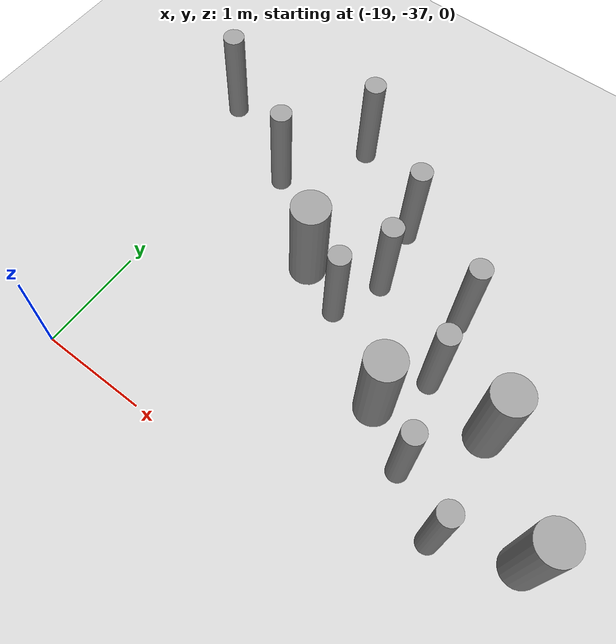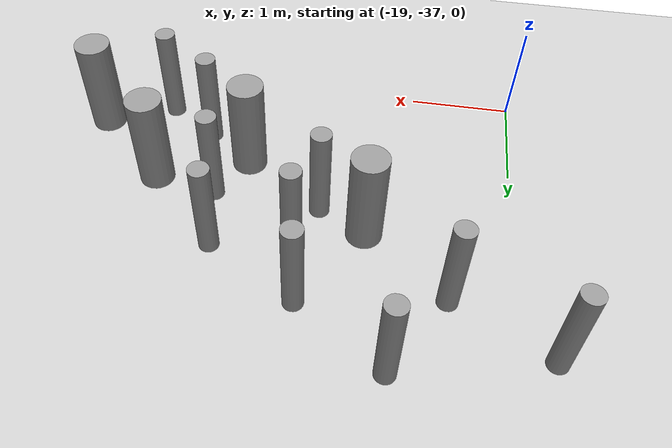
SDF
<sdf version="1.6">
 <world name="default">
  <model name="ground_plane">
   <static>1</static>
   <link name="link">
    <collision name="collision">
     <geometry><plane><normal>0 0 1</normal><size>100 100</size></plane></geometry>
     <surface><friction><ode><mu>100</mu><mu2>50</mu2></ode></friction></surface>
    </collision>
    <visual name="visual">
     <cast_shadows>0</cast_shadows>
     <geometry><plane><normal>0 0 1</normal><size>100 100</size></plane></geometry>
     <material>
      <script><uri>file://media/materials/scripts/gazebo.material</uri><name>Gazebo/Grey</name></script>
     </material>
    </visual>
   </link>
  </model>
  <model name="cyl_wall_clone_clone_1_clone_clone_0">
   <link name="link_0">
    <pose>-2.73893 -0.366465 0 0 -0 0</pose>
    <inertial>
     <mass>0.0374993</mass>
     <inertia>
      <ixx>0.00321281</ixx>
      <ixy>0</ixy>
      <ixz>0</ixz>
      <iyy>0.00321281</iyy>
      <iyz>0</iyz>
      <izz>0.000175774</izz>
     </inertia>
    </inertial>
    <visual name="visual">
     <geometry><cylinder><radius>0.0968661</radius><length>1</length></cylinder></geometry>
     <material>
      <lighting>1</lighting>
      <script><uri>file://media/materials/scripts/gazebo.material</uri><name>Gazebo/Grey</name></script>
      <ambient>0.3 0.3 0.3 1</ambient>
      <diffuse>0.7 0.7 0.7 1</diffuse>
      <specular>0.01 0.01 0.01 1</specular>
      <emissive>0 0 0 1</emissive>
     </material>
    </visual>
    <collision name="collision">
     <geometry><cylinder><radius>0.096866</radius><length>1</length></cylinder></geometry>
     <surface>
      <friction>
       <ode><mu>1</mu><mu2>1</mu2><fdir1>0 0 0</fdir1><slip1>0</slip1><slip2>0</slip2></ode>
       <torsional>
        <coefficient>1</coefficient>
        <patch_radius>0</patch_radius>
        <surface_radius>0</surface_radius>
        <use_patch_radius>1</use_patch_radius>
        <ode><slip>0</slip></ode>
       </torsional>
      </friction>
      <bounce><restitution_coefficient>0</restitution_coefficient><threshold>1e+06</threshold></bounce>
      <contact>
       <collide_without_contact>0</collide_without_contact>
       <collide_without_contact_bitmask>1</collide_without_contact_bitmask>
       <collide_bitmask>1</collide_bitmask>
       <ode>
        <soft_cfm>0</soft_cfm>
        <soft_erp>0.2</soft_erp>
        <kp>1e+13</kp>
        <kd>1</kd>
        <max_vel>0.01</max_vel>
        <min_depth>0</min_depth>
       </ode>
       <bullet>
        <split_impulse>1</split_impulse>
        <split_impulse_penetration_threshold>-0.01</split_impulse_penetration_threshold>
        <soft_cfm>0</soft_cfm>
        <soft_erp>0.2</soft_erp>
        <kp>1e+13</kp>
        <kd>1</kd>
       </bullet>
      </contact>
     </surface>
    </collision>
   </link>
   <link name="link_0_clone">
    <pose>-1.73893 0.61877 0 0 -0 0</pose>
    <inertial>
     <mass>0.0374993</mass>
     <inertia>
      <ixx>0.00321281</ixx>
      <ixy>0</ixy>
      <ixz>0</ixz>
      <iyy>0.00321281</iyy>
      <iyz>0</iyz>
      <izz>0.000175774</izz>
     </inertia>
    </inertial>
    <visual name="visual">
     <geometry><cylinder><radius>0.0968661</radius><length>1</length></cylinder></geometry>
     <material>
      <lighting>1</lighting>
      <script><uri>file://media/materials/scripts/gazebo.material</uri><name>Gazebo/Grey</name></script>
      <ambient>0.3 0.3 0.3 1</ambient>
      <diffuse>0.7 0.7 0.7 1</diffuse>
      <specular>0.01 0.01 0.01 1</specular>
      <emissive>0 0 0 1</emissive>
      <shader type="pixel"/>
     </material>
    </visual>
    <collision name="collision">
     <geometry><cylinder><radius>0.096866</radius><length>1</length></cylinder></geometry>
     <surface>
      <friction>
       <ode><mu>1</mu><mu2>1</mu2><fdir1>0 0 0</fdir1><slip1>0</slip1><slip2>0</slip2></ode>
       <torsional>
        <coefficient>1</coefficient>
        <patch_radius>0</patch_radius>
        <surface_radius>0</surface_radius>
        <use_patch_radius>1</use_patch_radius>
        <ode><slip>0</slip></ode>
       </torsional>
      </friction>
      <bounce><restitution_coefficient>0</restitution_coefficient><threshold>1e+06</threshold></bounce>
      <contact>
       <collide_without_contact>0</collide_without_contact>
       <collide_without_contact_bitmask>1</collide_without_contact_bitmask>
       <collide_bitmask>1</collide_bitmask>
       <ode>
        <soft_cfm>0</soft_cfm>
        <soft_erp>0.2</soft_erp>
        <kp>1e+13</kp>
        <kd>1</kd>
        <max_vel>0.01</max_vel>
        <min_depth>0</min_depth>
       </ode>
       <bullet>
        <split_impulse>1</split_impulse>
        <split_impulse_penetration_threshold>-0.01</split_impulse_penetration_threshold>
        <soft_cfm>0</soft_cfm>
        <soft_erp>0.2</soft_erp>
        <kp>1e+13</kp>
        <kd>1</kd>
       </bullet>
      </contact>
     </surface>
    </collision>
   </link>
   <link name="link_0_clone_clone">
    <pose>-0.327073 0.143919 0 0 -0 0</pose>
    <inertial>
     <mass>0.0374993</mass>
     <inertia>
      <ixx>0.00321281</ixx>
      <ixy>0</ixy>
      <ixz>0</ixz>
      <iyy>0.00321281</iyy>
      <iyz>0</iyz>
      <izz>0.000175774</izz>
     </inertia>
    </inertial>
    <visual name="visual">
     <geometry><cylinder><radius>0.0968661</radius><length>1</length></cylinder></geometry>
     <material>
      <lighting>1</lighting>
      <script><uri>file://media/materials/scripts/gazebo.material</uri><name>Gazebo/Grey</name></script>
      <ambient>0.3 0.3 0.3 1</ambient>
      <diffuse>0.7 0.7 0.7 1</diffuse>
      <specular>0.01 0.01 0.01 1</specular>
      <emissive>0 0 0 1</emissive>
      <shader type="pixel"/>
     </material>
    </visual>
    <collision name="collision">
     <geometry><cylinder><radius>0.096866</radius><length>1</length></cylinder></geometry>
     <surface>
      <friction>
       <ode><mu>1</mu><mu2>1</mu2><fdir1>0 0 0</fdir1><slip1>0</slip1><slip2>0</slip2></ode>
       <torsional>
        <coefficient>1</coefficient>
        <patch_radius>0</patch_radius>
        <surface_radius>0</surface_radius>
        <use_patch_radius>1</use_patch_radius>
        <ode><slip>0</slip></ode>
       </torsional>
      </friction>
      <bounce><restitution_coefficient>0</restitution_coefficient><threshold>1e+06</threshold></bounce>
      <contact>
       <collide_without_contact>0</collide_without_contact>
       <collide_without_contact_bitmask>1</collide_without_contact_bitmask>
       <collide_bitmask>1</collide_bitmask>
       <ode>
        <soft_cfm>0</soft_cfm>
        <soft_erp>0.2</soft_erp>
        <kp>1e+13</kp>
        <kd>1</kd>
        <max_vel>0.01</max_vel>
        <min_depth>0</min_depth>
       </ode>
       <bullet>
        <split_impulse>1</split_impulse>
        <split_impulse_penetration_threshold>-0.01</split_impulse_penetration_threshold>
        <soft_cfm>0</soft_cfm>
        <soft_erp>0.2</soft_erp>
        <kp>1e+13</kp>
        <kd>1</kd>
       </bullet>
      </contact>
     </surface>
    </collision>
   </link>
   <link name="link_0_clone_clone_0">
    <pose>1.26107 -0.419359 0 0 -0 0</pose>
    <inertial>
     <mass>0.0374993</mass>
     <inertia>
      <ixx>0.00321281</ixx>
      <ixy>0</ixy>
      <ixz>0</ixz>
      <iyy>0.00321281</iyy>
      <iyz>0</iyz>
      <izz>0.000175774</izz>
     </inertia>
    </inertial>
    <visual name="visual">
     <geometry><cylinder><radius>0.0968661</radius><length>1</length></cylinder></geometry>
     <material>
      <lighting>1</lighting>
      <script><uri>file://media/materials/scripts/gazebo.material</uri><name>Gazebo/Grey</name></script>
      <ambient>0.3 0.3 0.3 1</ambient>
      <diffuse>0.7 0.7 0.7 1</diffuse>
      <specular>0.01 0.01 0.01 1</specular>
      <emissive>0 0 0 1</emissive>
      <shader type="pixel"/>
     </material>
    </visual>
    <collision name="collision">
     <geometry><cylinder><radius>0.096866</radius><length>1</length></cylinder></geometry>
     <surface>
      <friction>
       <ode><mu>1</mu><mu2>1</mu2><fdir1>0 0 0</fdir1><slip1>0</slip1><slip2>0</slip2></ode>
       <torsional>
        <coefficient>1</coefficient>
        <patch_radius>0</patch_radius>
        <surface_radius>0</surface_radius>
        <use_patch_radius>1</use_patch_radius>
        <ode><slip>0</slip></ode>
       </torsional>
      </friction>
      <bounce><restitution_coefficient>0</restitution_coefficient><threshold>1e+06</threshold></bounce>
      <contact>
       <collide_without_contact>0</collide_without_contact>
       <collide_without_contact_bitmask>1</collide_without_contact_bitmask>
       <collide_bitmask>1</collide_bitmask>
       <ode>
        <soft_cfm>0</soft_cfm>
        <soft_erp>0.2</soft_erp>
        <kp>1e+13</kp>
        <kd>1</kd>
        <max_vel>0.01</max_vel>
        <min_depth>0</min_depth>
       </ode>
       <bullet>
        <split_impulse>1</split_impulse>
        <split_impulse_penetration_threshold>-0.01</split_impulse_penetration_threshold>
        <soft_cfm>0</soft_cfm>
        <soft_erp>0.2</soft_erp>
        <kp>1e+13</kp>
        <kd>1</kd>
       </bullet>
      </contact>
     </surface>
    </collision>
   </link>
   <link name="link_0_clone_clone_1">
    <pose>-1.73893 -0.277168 0 0 -0 0</pose>
    <inertial>
     <mass>0.0374993</mass>
     <inertia>
      <ixx>0.00321281</ixx>
      <ixy>0</ixy>
      <ixz>0</ixz>
      <iyy>0.00321281</iyy>
      <iyz>0</iyz>
      <izz>0.000175774</izz>
     </inertia>
    </inertial>
    <visual name="visual">
     <geometry><cylinder><radius>0.0968661</radius><length>1</length></cylinder></geometry>
     <material>
      <lighting>1</lighting>
      <script><uri>file://media/materials/scripts/gazebo.material</uri><name>Gazebo/Grey</name></script>
      <ambient>0.3 0.3 0.3 1</ambient>
      <diffuse>0.7 0.7 0.7 1</diffuse>
      <specular>0.01 0.01 0.01 1</specular>
      <emissive>0 0 0 1</emissive>
      <shader type="pixel"/>
     </material>
    </visual>
    <collision name="collision">
     <geometry><cylinder><radius>0.096866</radius><length>1</length></cylinder></geometry>
     <surface>
      <friction>
       <ode><mu>1</mu><mu2>1</mu2><fdir1>0 0 0</fdir1><slip1>0</slip1><slip2>0</slip2></ode>
       <torsional>
        <coefficient>1</coefficient>
        <patch_radius>0</patch_radius>
        <surface_radius>0</surface_radius>
        <use_patch_radius>1</use_patch_radius>
        <ode><slip>0</slip></ode>
       </torsional>
      </friction>
      <bounce><restitution_coefficient>0</restitution_coefficient><threshold>1e+06</threshold></bounce>
      <contact>
       <collide_without_contact>0</collide_without_contact>
       <collide_without_contact_bitmask>1</collide_without_contact_bitmask>
       <collide_bitmask>1</collide_bitmask>
       <ode>
        <soft_cfm>0</soft_cfm>
        <soft_erp>0.2</soft_erp>
        <kp>1e+13</kp>
        <kd>1</kd>
        <max_vel>0.01</max_vel>
        <min_depth>0</min_depth>
       </ode>
       <bullet>
        <split_impulse>1</split_impulse>
        <split_impulse_penetration_threshold>-0.01</split_impulse_penetration_threshold>
        <soft_cfm>0</soft_cfm>
        <soft_erp>0.2</soft_erp>
        <kp>1e+13</kp>
        <kd>1</kd>
       </bullet>
      </contact>
     </surface>
    </collision>
   </link>
   <link name="link_0_clone_clone_2">
    <pose>-0.738934 0.593961 0 0 -0 0</pose>
    <inertial>
     <mass>0.0374993</mass>
     <inertia>
      <ixx>0.00321281</ixx>
      <ixy>0</ixy>
      <ixz>0</ixz>
      <iyy>0.00321281</iyy>
      <iyz>0</iyz>
      <izz>0.000175774</izz>
     </inertia>
    </inertial>
    <visual name="visual">
     <geometry><cylinder><radius>0.0968661</radius><length>1</length></cylinder></geometry>
     <material>
      <lighting>1</lighting>
      <script><uri>file://media/materials/scripts/gazebo.material</uri><name>Gazebo/Grey</name></script>
      <ambient>0.3 0.3 0.3 1</ambient>
      <diffuse>0.7 0.7 0.7 1</diffuse>
      <specular>0.01 0.01 0.01 1</specular>
      <emissive>0 0 0 1</emissive>
      <shader type="pixel"/>
     </material>
    </visual>
    <collision name="collision">
     <geometry><cylinder><radius>0.096866</radius><length>1</length></cylinder></geometry>
     <surface>
      <friction>
       <ode><mu>1</mu><mu2>1</mu2><fdir1>0 0 0</fdir1><slip1>0</slip1><slip2>0</slip2></ode>
       <torsional>
        <coefficient>1</coefficient>
        <patch_radius>0</patch_radius>
        <surface_radius>0</surface_radius>
        <use_patch_radius>1</use_patch_radius>
        <ode><slip>0</slip></ode>
       </torsional>
      </friction>
      <bounce><restitution_coefficient>0</restitution_coefficient><threshold>1e+06</threshold></bounce>
      <contact>
       <collide_without_contact>0</collide_without_contact>
       <collide_without_contact_bitmask>1</collide_without_contact_bitmask>
       <collide_bitmask>1</collide_bitmask>
       <ode>
        <soft_cfm>0</soft_cfm>
        <soft_erp>0.2</soft_erp>
        <kp>1e+13</kp>
        <kd>1</kd>
        <max_vel>0.01</max_vel>
        <min_depth>0</min_depth>
       </ode>
       <bullet>
        <split_impulse>1</split_impulse>
        <split_impulse_penetration_threshold>-0.01</split_impulse_penetration_threshold>
        <soft_cfm>0</soft_cfm>
        <soft_erp>0.2</soft_erp>
        <kp>1e+13</kp>
        <kd>1</kd>
       </bullet>
      </contact>
     </surface>
    </collision>
   </link>
   <link name="link_0_clone_clone_3">
    <pose>0.261066 0.624849 0 0 -0 0</pose>
    <inertial>
     <mass>0.0374993</mass>
     <inertia>
      <ixx>0.00321281</ixx>
      <ixy>0</ixy>
      <ixz>0</ixz>
      <iyy>0.00321281</iyy>
      <iyz>0</iyz>
      <izz>0.000175774</izz>
     </inertia>
    </inertial>
    <visual name="visual">
     <geometry><cylinder><radius>0.0968661</radius><length>1</length></cylinder></geometry>
     <material>
      <lighting>1</lighting>
      <script><uri>file://media/materials/scripts/gazebo.material</uri><name>Gazebo/Grey</name></script>
      <ambient>0.3 0.3 0.3 1</ambient>
      <diffuse>0.7 0.7 0.7 1</diffuse>
      <specular>0.01 0.01 0.01 1</specular>
      <emissive>0 0 0 1</emissive>
      <shader type="pixel"/>
     </material>
    </visual>
    <collision name="collision">
     <geometry><cylinder><radius>0.096866</radius><length>1</length></cylinder></geometry>
     <surface>
      <friction>
       <ode><mu>1</mu><mu2>1</mu2><fdir1>0 0 0</fdir1><slip1>0</slip1><slip2>0</slip2></ode>
       <torsional>
        <coefficient>1</coefficient>
        <patch_radius>0</patch_radius>
        <surface_radius>0</surface_radius>
        <use_patch_radius>1</use_patch_radius>
        <ode><slip>0</slip></ode>
       </torsional>
      </friction>
      <bounce><restitution_coefficient>0</restitution_coefficient><threshold>1e+06</threshold></bounce>
      <contact>
       <collide_without_contact>0</collide_without_contact>
       <collide_without_contact_bitmask>1</collide_without_contact_bitmask>
       <collide_bitmask>1</collide_bitmask>
       <ode>
        <soft_cfm>0</soft_cfm>
        <soft_erp>0.2</soft_erp>
        <kp>1e+13</kp>
        <kd>1</kd>
        <max_vel>0.01</max_vel>
        <min_depth>0</min_depth>
       </ode>
       <bullet>
        <split_impulse>1</split_impulse>
        <split_impulse_penetration_threshold>-0.01</split_impulse_penetration_threshold>
        <soft_cfm>0</soft_cfm>
        <soft_erp>0.2</soft_erp>
        <kp>1e+13</kp>
        <kd>1</kd>
       </bullet>
      </contact>
     </surface>
    </collision>
   </link>
   <link name="link_0_clone_clone_4">
    <pose>-0.239049 -0.353105 0 0 -0 0</pose>
    <inertial>
     <mass>0.0374993</mass>
     <inertia>
      <ixx>0.00321281</ixx>
      <ixy>0</ixy>
      <ixz>0</ixz>
      <iyy>0.00321281</iyy>
      <iyz>0</iyz>
      <izz>0.000175774</izz>
     </inertia>
    </inertial>
    <visual name="visual">
     <geometry><cylinder><radius>0.0968661</radius><length>1</length></cylinder></geometry>
     <material>
      <lighting>1</lighting>
      <script><uri>file://media/materials/scripts/gazebo.material</uri><name>Gazebo/Grey</name></script>
      <ambient>0.3 0.3 0.3 1</ambient>
      <diffuse>0.7 0.7 0.7 1</diffuse>
      <specular>0.01 0.01 0.01 1</specular>
      <emissive>0 0 0 1</emissive>
      <shader type="pixel"/>
     </material>
    </visual>
    <collision name="collision">
     <geometry><cylinder><radius>0.096866</radius><length>1</length></cylinder></geometry>
     <surface>
      <friction>
       <ode><mu>1</mu><mu2>1</mu2><fdir1>0 0 0</fdir1><slip1>0</slip1><slip2>0</slip2></ode>
       <torsional>
        <coefficient>1</coefficient>
        <patch_radius>0</patch_radius>
        <surface_radius>0</surface_radius>
        <use_patch_radius>1</use_patch_radius>
        <ode><slip>0</slip></ode>
       </torsional>
      </friction>
      <bounce><restitution_coefficient>0</restitution_coefficient><threshold>1e+06</threshold></bounce>
      <contact>
       <collide_without_contact>0</collide_without_contact>
       <collide_without_contact_bitmask>1</collide_without_contact_bitmask>
       <collide_bitmask>1</collide_bitmask>
       <ode>
        <soft_cfm>0</soft_cfm>
        <soft_erp>0.2</soft_erp>
        <kp>1e+13</kp>
        <kd>1</kd>
        <max_vel>0.01</max_vel>
        <min_depth>0</min_depth>
       </ode>
       <bullet>
        <split_impulse>1</split_impulse>
        <split_impulse_penetration_threshold>-0.01</split_impulse_penetration_threshold>
        <soft_cfm>0</soft_cfm>
        <soft_erp>0.2</soft_erp>
        <kp>1e+13</kp>
        <kd>1</kd>
       </bullet>
      </contact>
     </surface>
    </collision>
   </link>
   <link name="link_0_clone_clone_5">
    <pose>0.672792 0.143919 0 0 -0 0</pose>
    <inertial>
     <mass>0.0374993</mass>
     <inertia>
      <ixx>0.00321281</ixx>
      <ixy>0</ixy>
      <ixz>0</ixz>
      <iyy>0.00321281</iyy>
      <iyz>0</iyz>
      <izz>0.000175774</izz>
     </inertia>
    </inertial>
    <visual name="visual">
     <geometry><cylinder><radius>0.0968661</radius><length>1</length></cylinder></geometry>
     <material>
      <lighting>1</lighting>
      <script><uri>file://media/materials/scripts/gazebo.material</uri><name>Gazebo/Grey</name></script>
      <ambient>0.3 0.3 0.3 1</ambient>
      <diffuse>0.7 0.7 0.7 1</diffuse>
      <specular>0.01 0.01 0.01 1</specular>
      <emissive>0 0 0 1</emissive>
      <shader type="pixel"/>
     </material>
    </visual>
    <collision name="collision">
     <geometry><cylinder><radius>0.096866</radius><length>1</length></cylinder></geometry>
     <surface>
      <friction>
       <ode><mu>1</mu><mu2>1</mu2><fdir1>0 0 0</fdir1><slip1>0</slip1><slip2>0</slip2></ode>
       <torsional>
        <coefficient>1</coefficient>
        <patch_radius>0</patch_radius>
        <surface_radius>0</surface_radius>
        <use_patch_radius>1</use_patch_radius>
        <ode><slip>0</slip></ode>
       </torsional>
      </friction>
      <bounce><restitution_coefficient>0</restitution_coefficient><threshold>1e+06</threshold></bounce>
      <contact>
       <collide_without_contact>0</collide_without_contact>
       <collide_without_contact_bitmask>1</collide_without_contact_bitmask>
       <collide_bitmask>1</collide_bitmask>
       <ode>
        <soft_cfm>0</soft_cfm>
        <soft_erp>0.2</soft_erp>
        <kp>1e+13</kp>
        <kd>1</kd>
        <max_vel>0.01</max_vel>
        <min_depth>0</min_depth>
       </ode>
       <bullet>
        <split_impulse>1</split_impulse>
        <split_impulse_penetration_threshold>-0.01</split_impulse_penetration_threshold>
        <soft_cfm>0</soft_cfm>
        <soft_erp>0.2</soft_erp>
        <kp>1e+13</kp>
        <kd>1</kd>
       </bullet>
      </contact>
     </surface>
    </collision>
   </link>
   <link name="link_0_clone_clone_6">
    <pose>1.84596 -0.433423 0 0 -0 0</pose>
    <inertial>
     <mass>0.0374993</mass>
     <inertia>
      <ixx>0.00321281</ixx>
      <ixy>0</ixy>
      <ixz>0</ixz>
      <iyy>0.00321281</iyy>
      <iyz>0</iyz>
      <izz>0.000175774</izz>
     </inertia>
    </inertial>
    <visual name="visual">
     <geometry><cylinder><radius>0.0968661</radius><length>1</length></cylinder></geometry>
     <material>
      <lighting>1</lighting>
      <script><uri>file://media/materials/scripts/gazebo.material</uri><name>Gazebo/Grey</name></script>
      <ambient>0.3 0.3 0.3 1</ambient>
      <diffuse>0.7 0.7 0.7 1</diffuse>
      <specular>0.01 0.01 0.01 1</specular>
      <emissive>0 0 0 1</emissive>
      <shader type="pixel"/>
     </material>
    </visual>
    <collision name="collision">
     <geometry><cylinder><radius>0.096866</radius><length>1</length></cylinder></geometry>
     <surface>
      <friction>
       <ode><mu>1</mu><mu2>1</mu2><fdir1>0 0 0</fdir1><slip1>0</slip1><slip2>0</slip2></ode>
       <torsional>
        <coefficient>1</coefficient>
        <patch_radius>0</patch_radius>
        <surface_radius>0</surface_radius>
        <use_patch_radius>1</use_patch_radius>
        <ode><slip>0</slip></ode>
       </torsional>
      </friction>
      <bounce><restitution_coefficient>0</restitution_coefficient><threshold>1e+06</threshold></bounce>
      <contact>
       <collide_without_contact>0</collide_without_contact>
       <collide_without_contact_bitmask>1</collide_without_contact_bitmask>
       <collide_bitmask>1</collide_bitmask>
       <ode>
        <soft_cfm>0</soft_cfm>
        <soft_erp>0.2</soft_erp>
        <kp>1e+13</kp>
        <kd>1</kd>
        <max_vel>0.01</max_vel>
        <min_depth>0</min_depth>
       </ode>
       <bullet>
        <split_impulse>1</split_impulse>
        <split_impulse_penetration_threshold>-0.01</split_impulse_penetration_threshold>
        <soft_cfm>0</soft_cfm>
        <soft_erp>0.2</soft_erp>
        <kp>1e+13</kp>
        <kd>1</kd>
       </bullet>
      </contact>
     </surface>
    </collision>
   </link>
   <link name="link_1">
    <pose>-0.738934 -0.397931 0 0 -0 0</pose>
    <inertial>
     <mass>0.117398</mass>
     <inertia>
      <ixx>0.0106445</ixx>
      <ixy>0</ixy>
      <ixz>0</ixz>
      <iyy>0.0106445</iyy>
      <iyz>0</iyz>
      <izz>0.00172278</izz>
     </inertia>
    </inertial>
    <visual name="visual">
     <geometry><cylinder><radius>0.171317</radius><length>1</length></cylinder></geometry>
     <material>
      <lighting>1</lighting>
      <script><uri>file://media/materials/scripts/gazebo.material</uri><name>Gazebo/Grey</name></script>
      <ambient>0.3 0.3 0.3 1</ambient>
      <diffuse>0.7 0.7 0.7 1</diffuse>
      <specular>0.01 0.01 0.01 1</specular>
      <emissive>0 0 0 1</emissive>
     </material>
    </visual>
    <collision name="collision">
     <geometry><cylinder><radius>0.171317</radius><length>1</length></cylinder></geometry>
     <surface>
      <friction>
       <ode><mu>1</mu><mu2>1</mu2><fdir1>0 0 0</fdir1><slip1>0</slip1><slip2>0</slip2></ode>
       <torsional>
        <coefficient>1</coefficient>
        <patch_radius>0</patch_radius>
        <surface_radius>0</surface_radius>
        <use_patch_radius>1</use_patch_radius>
        <ode><slip>0</slip></ode>
       </torsional>
      </friction>
      <bounce><restitution_coefficient>0</restitution_coefficient><threshold>1e+06</threshold></bounce>
      <contact>
       <collide_without_contact>0</collide_without_contact>
       <collide_without_contact_bitmask>1</collide_without_contact_bitmask>
       <collide_bitmask>1</collide_bitmask>
       <ode>
        <soft_cfm>0</soft_cfm>
        <soft_erp>0.2</soft_erp>
        <kp>1e+13</kp>
        <kd>1</kd>
        <max_vel>0.01</max_vel>
        <min_depth>0</min_depth>
       </ode>
       <bullet>
        <split_impulse>1</split_impulse>
        <split_impulse_penetration_threshold>-0.01</split_impulse_penetration_threshold>
        <soft_cfm>0</soft_cfm>
        <soft_erp>0.2</soft_erp>
        <kp>1e+13</kp>
        <kd>1</kd>
       </bullet>
      </contact>
     </surface>
    </collision>
   </link>
   <link name="link_1_clone">
    <pose>0.697784 -0.380861 0 0 -0 0</pose>
    <inertial>
     <mass>0.117398</mass>
     <inertia>
      <ixx>0.0106445</ixx>
      <ixy>0</ixy>
      <ixz>0</ixz>
      <iyy>0.0106445</iyy>
      <iyz>0</iyz>
      <izz>0.00172278</izz>
     </inertia>
    </inertial>
    <visual name="visual">
     <geometry><cylinder><radius>0.171317</radius><length>1</length></cylinder></geometry>
     <material>
      <lighting>1</lighting>
      <script><uri>file://media/materials/scripts/gazebo.material</uri><name>Gazebo/Grey</name></script>
      <ambient>0.3 0.3 0.3 1</ambient>
      <diffuse>0.7 0.7 0.7 1</diffuse>
      <specular>0.01 0.01 0.01 1</specular>
      <emissive>0 0 0 1</emissive>
      <shader type="pixel"/>
     </material>
    </visual>
    <collision name="collision">
     <geometry><cylinder><radius>0.171317</radius><length>1</length></cylinder></geometry>
     <surface>
      <friction>
       <ode><mu>1</mu><mu2>1</mu2><fdir1>0 0 0</fdir1><slip1>0</slip1><slip2>0</slip2></ode>
       <torsional>
        <coefficient>1</coefficient>
        <patch_radius>0</patch_radius>
        <surface_radius>0</surface_radius>
        <use_patch_radius>1</use_patch_radius>
        <ode><slip>0</slip></ode>
       </torsional>
      </friction>
      <bounce><restitution_coefficient>0</restitution_coefficient><threshold>1e+06</threshold></bounce>
      <contact>
       <collide_without_contact>0</collide_without_contact>
       <collide_without_contact_bitmask>1</collide_without_contact_bitmask>
       <collide_bitmask>1</collide_bitmask>
       <ode>
        <soft_cfm>0</soft_cfm>
        <soft_erp>0.2</soft_erp>
        <kp>1e+13</kp>
        <kd>1</kd>
        <max_vel>0.01</max_vel>
        <min_depth>0</min_depth>
       </ode>
       <bullet>
        <split_impulse>1</split_impulse>
        <split_impulse_penetration_threshold>-0.01</split_impulse_penetration_threshold>
        <soft_cfm>0</soft_cfm>
        <soft_erp>0.2</soft_erp>
        <kp>1e+13</kp>
        <kd>1</kd>
       </bullet>
      </contact>
     </surface>
    </collision>
   </link>
   <link name="link_1_clone_0">
    <pose>1.26107 0.358974 0 0 -0 0</pose>
    <inertial>
     <mass>0.117398</mass>
     <inertia>
      <ixx>0.0106445</ixx>
      <ixy>0</ixy>
      <ixz>0</ixz>
      <iyy>0.0106445</iyy>
      <iyz>0</iyz>
      <izz>0.00172278</izz>
     </inertia>
    </inertial>
    <visual name="visual">
     <geometry><cylinder><radius>0.171317</radius><length>1</length></cylinder></geometry>
     <material>
      <lighting>1</lighting>
      <script><uri>file://media/materials/scripts/gazebo.material</uri><name>Gazebo/Grey</name></script>
      <ambient>0.3 0.3 0.3 1</ambient>
      <diffuse>0.7 0.7 0.7 1</diffuse>
      <specular>0.01 0.01 0.01 1</specular>
      <emissive>0 0 0 1</emissive>
      <shader type="pixel"/>
     </material>
    </visual>
    <collision name="collision">
     <geometry><cylinder><radius>0.171317</radius><length>1</length></cylinder></geometry>
     <surface>
      <friction>
       <ode><mu>1</mu><mu2>1</mu2><fdir1>0 0 0</fdir1><slip1>0</slip1><slip2>0</slip2></ode>
       <torsional>
        <coefficient>1</coefficient>
        <patch_radius>0</patch_radius>
        <surface_radius>0</surface_radius>
        <use_patch_radius>1</use_patch_radius>
        <ode><slip>0</slip></ode>
       </torsional>
      </friction>
      <bounce><restitution_coefficient>0</restitution_coefficient><threshold>1e+06</threshold></bounce>
      <contact>
       <collide_without_contact>0</collide_without_contact>
       <collide_without_contact_bitmask>1</collide_without_contact_bitmask>
       <collide_bitmask>1</collide_bitmask>
       <ode>
        <soft_cfm>0</soft_cfm>
        <soft_erp>0.2</soft_erp>
        <kp>1e+13</kp>
        <kd>1</kd>
        <max_vel>0.01</max_vel>
        <min_depth>0</min_depth>
       </ode>
       <bullet>
        <split_impulse>1</split_impulse>
        <split_impulse_penetration_threshold>-0.01</split_impulse_penetration_threshold>
        <soft_cfm>0</soft_cfm>
        <soft_erp>0.2</soft_erp>
        <kp>1e+13</kp>
        <kd>1</kd>
       </bullet>
      </contact>
     </surface>
    </collision>
   </link>
   <link name="link_1_clone_1">
    <pose>2.26107 0.143919 0 0 -0 0</pose>
    <inertial>
     <mass>0.117398</mass>
     <inertia>
      <ixx>0.0106445</ixx>
      <ixy>0</ixy>
      <ixz>0</ixz>
      <iyy>0.0106445</iyy>
      <iyz>0</iyz>
      <izz>0.00172278</izz>
     </inertia>
    </inertial>
    <visual name="visual">
     <geometry><cylinder><radius>0.171317</radius><length>1</length></cylinder></geometry>
     <material>
      <lighting>1</lighting>
      <script><uri>file://media/materials/scripts/gazebo.material</uri><name>Gazebo/Grey</name></script>
      <ambient>0.3 0.3 0.3 1</ambient>
      <diffuse>0.7 0.7 0.7 1</diffuse>
      <specular>0.01 0.01 0.01 1</specular>
      <emissive>0 0 0 1</emissive>
      <shader type="pixel"/>
     </material>
    </visual>
    <collision name="collision">
     <geometry><cylinder><radius>0.171317</radius><length>1</length></cylinder></geometry>
     <surface>
      <friction>
       <ode><mu>1</mu><mu2>1</mu2><fdir1>0 0 0</fdir1><slip1>0</slip1><slip2>0</slip2></ode>
       <torsional>
        <coefficient>1</coefficient>
        <patch_radius>0</patch_radius>
        <surface_radius>0</surface_radius>
        <use_patch_radius>1</use_patch_radius>
        <ode><slip>0</slip></ode>
       </torsional>
      </friction>
      <bounce><restitution_coefficient>0</restitution_coefficient><threshold>1e+06</threshold></bounce>
      <contact>
       <collide_without_contact>0</collide_without_contact>
       <collide_without_contact_bitmask>1</collide_without_contact_bitmask>
       <collide_bitmask>1</collide_bitmask>
       <ode>
        <soft_cfm>0</soft_cfm>
        <soft_erp>0.2</soft_erp>
        <kp>1e+13</kp>
        <kd>1</kd>
        <max_vel>0.01</max_vel>
        <min_depth>0</min_depth>
       </ode>
       <bullet>
        <split_impulse>1</split_impulse>
        <split_impulse_penetration_threshold>-0.01</split_impulse_penetration_threshold>
        <soft_cfm>0</soft_cfm>
        <soft_erp>0.2</soft_erp>
        <kp>1e+13</kp>
        <kd>1</kd>
       </bullet>
      </contact>
     </surface>
    </collision>
   </link>
   <static>1</static>
   <pose>-16.8252 -35.1068 0.5 0 0 -0.549185</pose>
  </model>
 </world>
</sdf>
